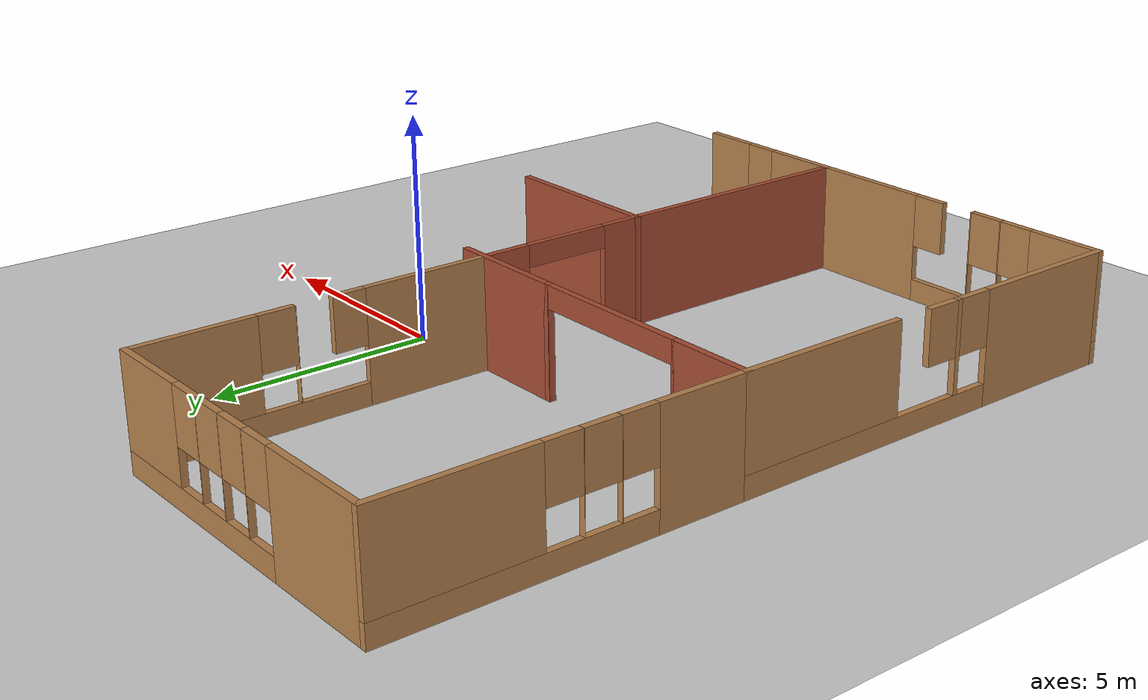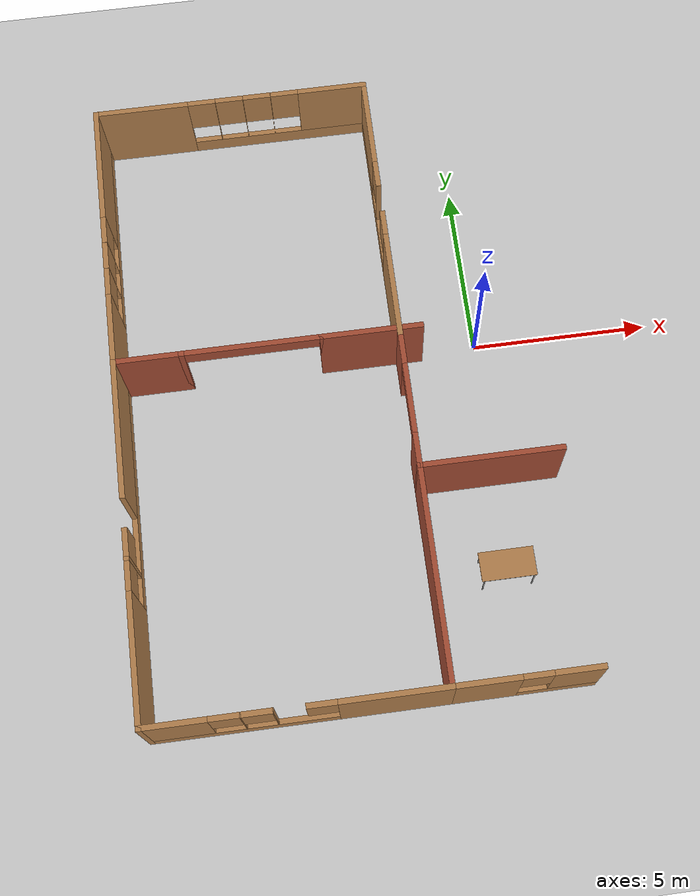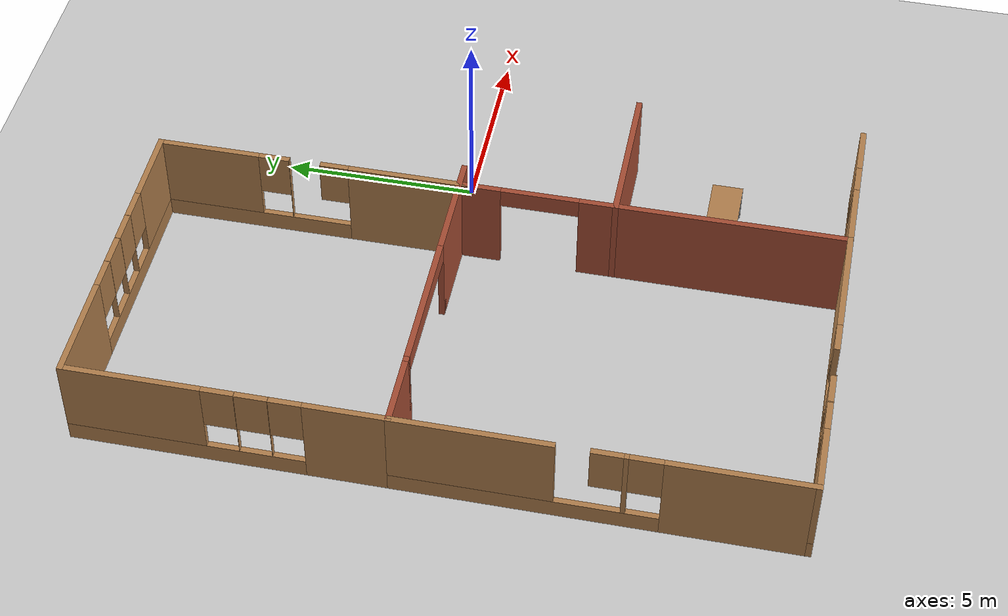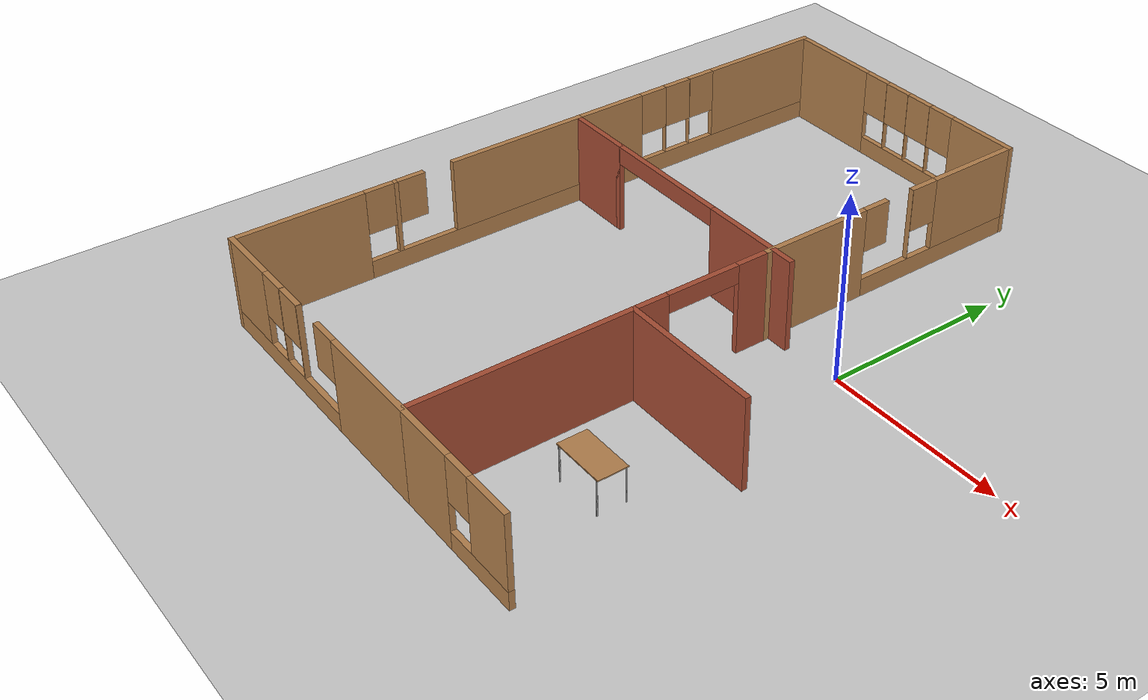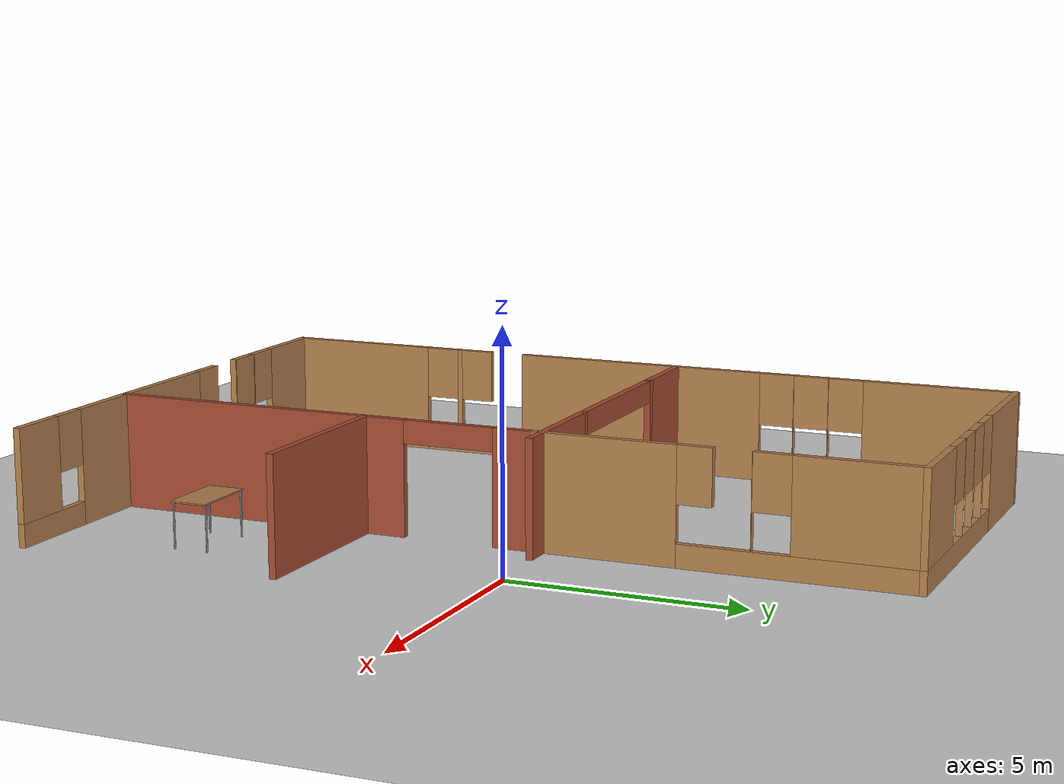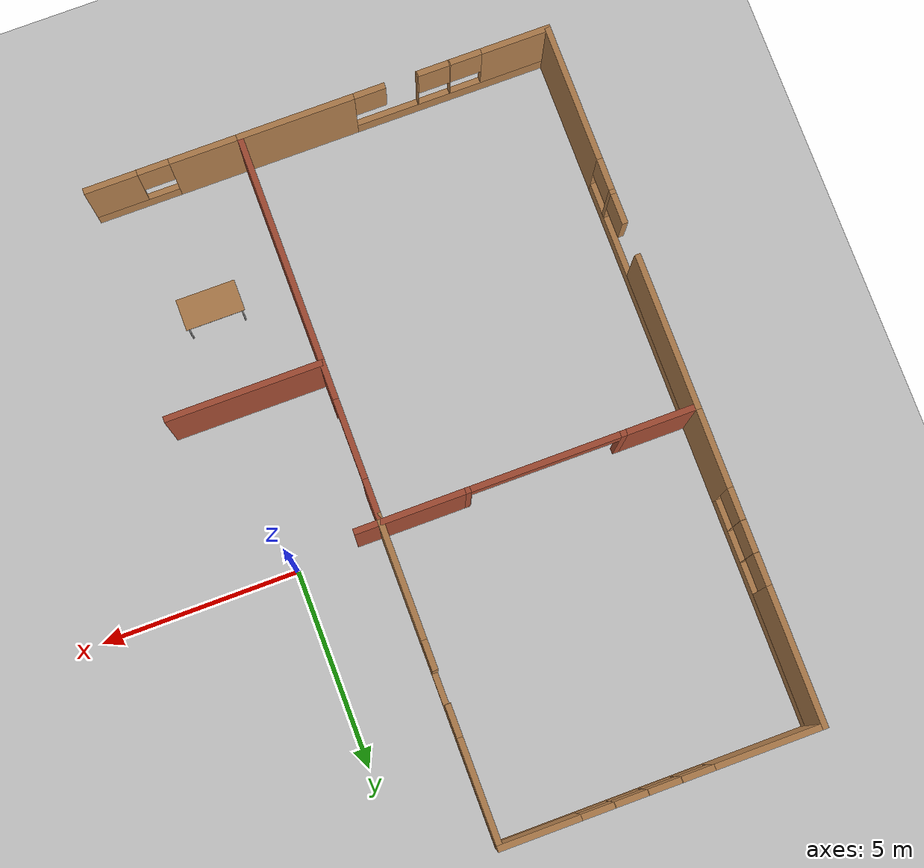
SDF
<sdf version="1.7">
 <world name="default">
  <model name="ground_plane">
   <static>1</static>
   <link name="link">
    <collision name="collision">
     <geometry><plane><normal>0 0 1</normal><size>100 100</size></plane></geometry>
     <surface>
      <contact><collide_bitmask>65535</collide_bitmask></contact>
      <friction><ode><mu>100</mu><mu2>50</mu2></ode></friction>
     </surface>
    </collision>
    <visual name="visual">
     <cast_shadows>0</cast_shadows>
     <geometry><plane><normal>0 0 1</normal><size>100 100</size></plane></geometry>
     <material>
      <script><uri>file://media/materials/scripts/gazebo.material</uri><name>Gazebo/Grey</name></script>
     </material>
    </visual>
   </link>
  </model>
  <model name="Untitled">
   <pose>3.61362 -0.139707 0 0 -0 0</pose>
   <link name="Wall_114">
    <collision name="Wall_114_Collision">
     <geometry><box><size>2 0.15 2.5</size></box></geometry>
     <pose>0 0 1.25 0 -0 0</pose>
    </collision>
    <visual name="Wall_114_Visual">
     <pose>0 0 1.25 0 -0 0</pose>
     <geometry><box><size>2 0.15 2.5</size></box></geometry>
     <material>
      <script><uri>file://media/materials/scripts/gazebo.material</uri><name>Gazebo/Bricks</name></script>
      <ambient>1 1 1 1</ambient>
     </material>
     <meta><layer>0</layer></meta>
    </visual>
    <pose>-12.775 0 0 0 -0 0</pose>
   </link>
   <link name="Wall_117">
    <pose>-9.925 0 0 0 -0 0</pose>
    <visual name="Wall_117_Visual_0">
     <pose>-1.92316 0 1.25 0 -0 0</pose>
     <geometry><box><size>0.15368 0.15 2.5</size></box></geometry>
     <material>
      <script><uri>file://media/materials/scripts/gazebo.material</uri><name>Gazebo/Bricks</name></script>
      <ambient>1 1 1 1</ambient>
     </material>
     <meta><layer>0</layer></meta>
    </visual>
    <collision name="Wall_117_Collision_0">
     <geometry><box><size>0.15368 0.15 2.5</size></box></geometry>
     <pose>-1.92316 0 1.25 0 -0 0</pose>
    </collision>
    <visual name="Wall_117_Visual_1">
     <pose>1.93479 0 1.25 0 -0 0</pose>
     <geometry><box><size>0.13042 0.15 2.5</size></box></geometry>
     <material>
      <script><uri>file://media/materials/scripts/gazebo.material</uri><name>Gazebo/Bricks</name></script>
      <ambient>1 1 1 1</ambient>
     </material>
     <meta><layer>0</layer></meta>
    </visual>
    <collision name="Wall_117_Collision_1">
     <geometry><box><size>0.13042 0.15 2.5</size></box></geometry>
     <pose>1.93479 0 1.25 0 -0 0</pose>
    </collision>
    <visual name="Wall_117_Visual_2">
     <pose>0.01163 0 2.25 0 -0 0</pose>
     <geometry><box><size>3.7159 0.15 0.5</size></box></geometry>
     <material>
      <script><uri>file://media/materials/scripts/gazebo.material</uri><name>Gazebo/Bricks</name></script>
      <ambient>1 1 1 1</ambient>
     </material>
     <meta><layer>0</layer></meta>
    </visual>
    <collision name="Wall_117_Collision_2">
     <geometry><box><size>3.7159 0.15 0.5</size></box></geometry>
     <pose>0.01163 0 2.25 0 -0 0</pose>
    </collision>
   </link>
   <link name="Wall_120">
    <collision name="Wall_120_Collision">
     <geometry><box><size>2.9 0.15 2.5</size></box></geometry>
     <pose>0 0 1.25 0 -0 0</pose>
    </collision>
    <visual name="Wall_120_Visual">
     <pose>0 0 1.25 0 -0 0</pose>
     <geometry><box><size>2.9 0.15 2.5</size></box></geometry>
     <material>
      <script><uri>file://media/materials/scripts/gazebo.material</uri><name>Gazebo/Bricks</name></script>
      <ambient>1 1 1 1</ambient>
     </material>
     <meta><layer>0</layer></meta>
    </visual>
    <pose>-6.625 0 0 0 -0 0</pose>
   </link>
   <link name="Wall_139">
    <pose>-9.775 -9.85 0 0 -0 3.14159</pose>
    <visual name="Wall_139_Visual_0">
     <pose>-2.51688 0 1.25 0 -0 0</pose>
     <geometry><box><size>2.96623 0.15 2.5</size></box></geometry>
     <material>
      <script><uri>file://media/materials/scripts/gazebo.material</uri><name>Gazebo/Wood</name></script>
      <ambient>1 1 1 1</ambient>
     </material>
     <meta><layer>0</layer></meta>
    </visual>
    <collision name="Wall_139_Collision_0">
     <geometry><box><size>2.96623 0.15 2.5</size></box></geometry>
     <pose>-2.51688 0 1.25 0 -0 0</pose>
    </collision>
    <visual name="Wall_139_Visual_1">
     <pose>1.48312 0 0.25 0 -0 0</pose>
     <geometry><box><size>5.03377 0.15 0.5</size></box></geometry>
     <material>
      <script><uri>file://media/materials/scripts/gazebo.material</uri><name>Gazebo/Wood</name></script>
      <ambient>1 1 1 1</ambient>
     </material>
     <meta><layer>0</layer></meta>
    </visual>
    <collision name="Wall_139_Collision_1">
     <geometry><box><size>5.03377 0.15 0.5</size></box></geometry>
     <pose>1.48312 0 0.25 0 -0 0</pose>
    </collision>
    <visual name="Wall_139_Visual_2">
     <pose>0.576542 0 1.5 0 -0 0</pose>
     <geometry><box><size>0.024607 0.15 2</size></box></geometry>
     <material>
      <script><uri>file://media/materials/scripts/gazebo.material</uri><name>Gazebo/Wood</name></script>
      <ambient>1 1 1 1</ambient>
     </material>
     <meta><layer>0</layer></meta>
    </visual>
    <collision name="Wall_139_Collision_2">
     <geometry><box><size>0.024607 0.15 2</size></box></geometry>
     <pose>0.576542 0 1.5 0 -0 0</pose>
    </collision>
    <visual name="Wall_139_Visual_3">
     <pose>1.40115 0 1.5 0 -0 0</pose>
     <geometry><box><size>0.024605 0.15 2</size></box></geometry>
     <material>
      <script><uri>file://media/materials/scripts/gazebo.material</uri><name>Gazebo/Wood</name></script>
      <ambient>1 1 1 1</ambient>
     </material>
     <meta><layer>0</layer></meta>
    </visual>
    <collision name="Wall_139_Collision_3">
     <geometry><box><size>0.024605 0.15 2</size></box></geometry>
     <pose>1.40115 0 1.5 0 -0 0</pose>
    </collision>
    <visual name="Wall_139_Visual_4">
     <pose>3.10672 0 1.5 0 -0 0</pose>
     <geometry><box><size>1.78655 0.15 2</size></box></geometry>
     <material>
      <script><uri>file://media/materials/scripts/gazebo.material</uri><name>Gazebo/Wood</name></script>
      <ambient>1 1 1 1</ambient>
     </material>
     <meta><layer>0</layer></meta>
    </visual>
    <collision name="Wall_139_Collision_4">
     <geometry><box><size>1.78655 0.15 2</size></box></geometry>
     <pose>3.10672 0 1.5 0 -0 0</pose>
    </collision>
    <visual name="Wall_139_Visual_5">
     <pose>-0.634764 0 1.9 0 -0 0</pose>
     <geometry><box><size>0.798006 0.15 1.2</size></box></geometry>
     <material>
      <script><uri>file://media/materials/scripts/gazebo.material</uri><name>Gazebo/Wood</name></script>
      <ambient>1 1 1 1</ambient>
     </material>
     <meta><layer>0</layer></meta>
    </visual>
    <collision name="Wall_139_Collision_5">
     <geometry><box><size>0.798006 0.15 1.2</size></box></geometry>
     <pose>-0.634764 0 1.9 0 -0 0</pose>
    </collision>
    <visual name="Wall_139_Visual_6">
     <pose>0.988846 0 1.9 0 -0 0</pose>
     <geometry><box><size>0.8 0.15 1.2</size></box></geometry>
     <material>
      <script><uri>file://media/materials/scripts/gazebo.material</uri><name>Gazebo/Wood</name></script>
      <ambient>1 1 1 1</ambient>
     </material>
     <meta><layer>0</layer></meta>
    </visual>
    <collision name="Wall_139_Collision_6">
     <geometry><box><size>0.8 0.15 1.2</size></box></geometry>
     <pose>0.988846 0 1.9 0 -0 0</pose>
    </collision>
    <visual name="Wall_139_Visual_7">
     <pose>1.81345 0 1.9 0 -0 0</pose>
     <geometry><box><size>0.8 0.15 1.2</size></box></geometry>
     <material>
      <script><uri>file://media/materials/scripts/gazebo.material</uri><name>Gazebo/Wood</name></script>
      <ambient>1 1 1 1</ambient>
     </material>
     <meta><layer>0</layer></meta>
    </visual>
    <collision name="Wall_139_Collision_7">
     <geometry><box><size>0.8 0.15 1.2</size></box></geometry>
     <pose>1.81345 0 1.9 0 -0 0</pose>
    </collision>
   </link>
   <link name="Wall_142">
    <pose>-13.7 -4.925 0 0 -0 1.5708</pose>
    <visual name="Wall_142_Visual_0">
     <pose>-3.22155 0 1.25 0 -0 0</pose>
     <geometry><box><size>3.55691 0.15 2.5</size></box></geometry>
     <material>
      <script><uri>file://media/materials/scripts/gazebo.material</uri><name>Gazebo/Wood</name></script>
      <ambient>1 1 1 1</ambient>
     </material>
     <meta><layer>0</layer></meta>
    </visual>
    <collision name="Wall_142_Collision_0">
     <geometry><box><size>3.55691 0.15 2.5</size></box></geometry>
     <pose>-3.22155 0 1.25 0 -0 0</pose>
    </collision>
    <visual name="Wall_142_Visual_1">
     <pose>1.77845 0 0.25 0 -0 0</pose>
     <geometry><box><size>6.44309 0.15 0.5</size></box></geometry>
     <material>
      <script><uri>file://media/materials/scripts/gazebo.material</uri><name>Gazebo/Wood</name></script>
      <ambient>1 1 1 1</ambient>
     </material>
     <meta><layer>0</layer></meta>
    </visual>
    <collision name="Wall_142_Collision_1">
     <geometry><box><size>6.44309 0.15 0.5</size></box></geometry>
     <pose>1.77845 0 0.25 0 -0 0</pose>
    </collision>
    <visual name="Wall_142_Visual_2">
     <pose>-0.58577 0 1.5 0 -0 0</pose>
     <geometry><box><size>0.114648 0.15 2</size></box></geometry>
     <material>
      <script><uri>file://media/materials/scripts/gazebo.material</uri><name>Gazebo/Wood</name></script>
      <ambient>1 1 1 1</ambient>
     </material>
     <meta><layer>0</layer></meta>
    </visual>
    <collision name="Wall_142_Collision_2">
     <geometry><box><size>0.114648 0.15 2</size></box></geometry>
     <pose>-0.58577 0 1.5 0 -0 0</pose>
    </collision>
    <visual name="Wall_142_Visual_3">
     <pose>3.02274 0 1.5 0 -0 0</pose>
     <geometry><box><size>3.95451 0.15 2</size></box></geometry>
     <material>
      <script><uri>file://media/materials/scripts/gazebo.material</uri><name>Gazebo/Wood</name></script>
      <ambient>1 1 1 1</ambient>
     </material>
     <meta><layer>0</layer></meta>
    </visual>
    <collision name="Wall_142_Collision_3">
     <geometry><box><size>3.95451 0.15 2</size></box></geometry>
     <pose>3.02274 0 1.5 0 -0 0</pose>
    </collision>
    <visual name="Wall_142_Visual_4">
     <pose>-1.04309 0 1.9 0 -0 0</pose>
     <geometry><box><size>0.8 0.15 1.2</size></box></geometry>
     <material>
      <script><uri>file://media/materials/scripts/gazebo.material</uri><name>Gazebo/Wood</name></script>
      <ambient>1 1 1 1</ambient>
     </material>
     <meta><layer>0</layer></meta>
    </visual>
    <collision name="Wall_142_Collision_4">
     <geometry><box><size>0.8 0.15 1.2</size></box></geometry>
     <pose>-1.04309 0 1.9 0 -0 0</pose>
    </collision>
    <visual name="Wall_142_Visual_5">
     <pose>-0.141479 0 1.9 0 -0 0</pose>
     <geometry><box><size>0.773933 0.15 1.2</size></box></geometry>
     <material>
      <script><uri>file://media/materials/scripts/gazebo.material</uri><name>Gazebo/Wood</name></script>
      <ambient>1 1 1 1</ambient>
     </material>
     <meta><layer>0</layer></meta>
    </visual>
    <collision name="Wall_142_Collision_5">
     <geometry><box><size>0.773933 0.15 1.2</size></box></geometry>
     <pose>-0.141479 0 1.9 0 -0 0</pose>
    </collision>
   </link>
   <link name="Wall_144">
    <collision name="Wall_144_Collision">
     <geometry><box><size>4 0.15 2.5</size></box></geometry>
     <pose>0 0 1.25 0 -0 0</pose>
    </collision>
    <visual name="Wall_144_Visual">
     <pose>0 0 1.25 0 -0 0</pose>
     <geometry><box><size>4 0.15 2.5</size></box></geometry>
     <material>
      <script><uri>file://media/materials/scripts/gazebo.material</uri><name>Gazebo/Bricks</name></script>
      <ambient>1 1 1 1</ambient>
     </material>
     <meta><layer>0</layer></meta>
    </visual>
    <pose>-3.925 -4 0 0 -0 3.14159</pose>
   </link>
   <link name="Wall_145">
    <collision name="Wall_145_Collision">
     <geometry><box><size>6 0.15 2.5</size></box></geometry>
     <pose>0 0 1.25 0 -0 0</pose>
    </collision>
    <visual name="Wall_145_Visual">
     <pose>0 0 1.25 0 -0 0</pose>
     <geometry><box><size>6 0.15 2.5</size></box></geometry>
     <material>
      <script><uri>file://media/materials/scripts/gazebo.material</uri><name>Gazebo/Bricks</name></script>
      <ambient>1 1 1 1</ambient>
     </material>
     <meta><layer>0</layer></meta>
    </visual>
    <pose>-5.85 -6.925 0 0 -0 -1.5708</pose>
   </link>
   <link name="Wall_147">
    <pose>-5.85 -2.075 0 0 -0 1.5708</pose>
    <visual name="Wall_147_Visual_0">
     <pose>-1.49946 0 1.25 0 -0 0</pose>
     <geometry><box><size>1.00108 0.15 2.5</size></box></geometry>
     <material>
      <script><uri>file://media/materials/scripts/gazebo.material</uri><name>Gazebo/Bricks</name></script>
      <ambient>1 1 1 1</ambient>
     </material>
     <meta><layer>0</layer></meta>
    </visual>
    <collision name="Wall_147_Collision_0">
     <geometry><box><size>1.00108 0.15 2.5</size></box></geometry>
     <pose>-1.49946 0 1.25 0 -0 0</pose>
    </collision>
    <visual name="Wall_147_Visual_1">
     <pose>1.50148 0 1.25 0 -0 0</pose>
     <geometry><box><size>0.997045 0.15 2.5</size></box></geometry>
     <material>
      <script><uri>file://media/materials/scripts/gazebo.material</uri><name>Gazebo/Bricks</name></script>
      <ambient>1 1 1 1</ambient>
     </material>
     <meta><layer>0</layer></meta>
    </visual>
    <collision name="Wall_147_Collision_1">
     <geometry><box><size>0.997045 0.15 2.5</size></box></geometry>
     <pose>1.50148 0 1.25 0 -0 0</pose>
    </collision>
    <visual name="Wall_147_Visual_2">
     <pose>0.002018 0 2.25 0 -0 0</pose>
     <geometry><box><size>2.00187 0.15 0.5</size></box></geometry>
     <material>
      <script><uri>file://media/materials/scripts/gazebo.material</uri><name>Gazebo/Bricks</name></script>
      <ambient>1 1 1 1</ambient>
     </material>
     <meta><layer>0</layer></meta>
    </visual>
    <collision name="Wall_147_Collision_2">
     <geometry><box><size>2.00187 0.15 0.5</size></box></geometry>
     <pose>0.002018 0 2.25 0 -0 0</pose>
    </collision>
   </link>
   <link name="Wall_152">
    <pose>-13.7 3.925 0 0 -0 1.5708</pose>
    <visual name="Wall_152_Visual_0">
     <pose>-2.94268 0 1.25 0 -0 0</pose>
     <geometry><box><size>2.11463 0.15 2.5</size></box></geometry>
     <material>
      <script><uri>file://media/materials/scripts/gazebo.material</uri><name>Gazebo/Wood</name></script>
      <ambient>1 1 1 1</ambient>
     </material>
     <meta><layer>0</layer></meta>
    </visual>
    <collision name="Wall_152_Collision_0">
     <geometry><box><size>2.11463 0.15 2.5</size></box></geometry>
     <pose>-2.94268 0 1.25 0 -0 0</pose>
    </collision>
    <visual name="Wall_152_Visual_1">
     <pose>1.05732 0 0.25 0 -0 0</pose>
     <geometry><box><size>5.88537 0.15 0.5</size></box></geometry>
     <material>
      <script><uri>file://media/materials/scripts/gazebo.material</uri><name>Gazebo/Wood</name></script>
      <ambient>1 1 1 1</ambient>
     </material>
     <meta><layer>0</layer></meta>
    </visual>
    <collision name="Wall_152_Collision_1">
     <geometry><box><size>5.88537 0.15 0.5</size></box></geometry>
     <pose>1.05732 0 0.25 0 -0 0</pose>
    </collision>
    <visual name="Wall_152_Visual_2">
     <pose>-1.08081 0 1.5 0 -0 0</pose>
     <geometry><box><size>0.009111 0.15 2</size></box></geometry>
     <material>
      <script><uri>file://media/materials/scripts/gazebo.material</uri><name>Gazebo/Wood</name></script>
      <ambient>1 1 1 1</ambient>
     </material>
     <meta><layer>0</layer></meta>
    </visual>
    <collision name="Wall_152_Collision_2">
     <geometry><box><size>0.009111 0.15 2</size></box></geometry>
     <pose>-1.08081 0 1.5 0 -0 0</pose>
    </collision>
    <visual name="Wall_152_Visual_3">
     <pose>-0.271702 0 1.5 0 -0 0</pose>
     <geometry><box><size>0.009112 0.15 2</size></box></geometry>
     <material>
      <script><uri>file://media/materials/scripts/gazebo.material</uri><name>Gazebo/Wood</name></script>
      <ambient>1 1 1 1</ambient>
     </material>
     <meta><layer>0</layer></meta>
    </visual>
    <collision name="Wall_152_Collision_3">
     <geometry><box><size>0.009112 0.15 2</size></box></geometry>
     <pose>-0.271702 0 1.5 0 -0 0</pose>
    </collision>
    <visual name="Wall_152_Visual_4">
     <pose>2.26643 0 1.5 0 -0 0</pose>
     <geometry><box><size>3.46715 0.15 2</size></box></geometry>
     <material>
      <script><uri>file://media/materials/scripts/gazebo.material</uri><name>Gazebo/Wood</name></script>
      <ambient>1 1 1 1</ambient>
     </material>
     <meta><layer>0</layer></meta>
    </visual>
    <collision name="Wall_152_Collision_4">
     <geometry><box><size>3.46715 0.15 2</size></box></geometry>
     <pose>2.26643 0 1.5 0 -0 0</pose>
    </collision>
    <visual name="Wall_152_Visual_5">
     <pose>-1.48537 0 1.9 0 -0 0</pose>
     <geometry><box><size>0.8 0.15 1.2</size></box></geometry>
     <material>
      <script><uri>file://media/materials/scripts/gazebo.material</uri><name>Gazebo/Wood</name></script>
      <ambient>1 1 1 1</ambient>
     </material>
     <meta><layer>0</layer></meta>
    </visual>
    <collision name="Wall_152_Collision_5">
     <geometry><box><size>0.8 0.15 1.2</size></box></geometry>
     <pose>-1.48537 0 1.9 0 -0 0</pose>
    </collision>
    <visual name="Wall_152_Visual_6">
     <pose>-0.676258 0 1.9 0 -0 0</pose>
     <geometry><box><size>0.8 0.15 1.2</size></box></geometry>
     <material>
      <script><uri>file://media/materials/scripts/gazebo.material</uri><name>Gazebo/Wood</name></script>
      <ambient>1 1 1 1</ambient>
     </material>
     <meta><layer>0</layer></meta>
    </visual>
    <collision name="Wall_152_Collision_6">
     <geometry><box><size>0.8 0.15 1.2</size></box></geometry>
     <pose>-0.676258 0 1.9 0 -0 0</pose>
    </collision>
    <visual name="Wall_152_Visual_7">
     <pose>0.132854 0 1.9 0 -0 0</pose>
     <geometry><box><size>0.8 0.15 1.2</size></box></geometry>
     <material>
      <script><uri>file://media/materials/scripts/gazebo.material</uri><name>Gazebo/Wood</name></script>
      <ambient>1 1 1 1</ambient>
     </material>
     <meta><layer>0</layer></meta>
    </visual>
    <collision name="Wall_152_Collision_7">
     <geometry><box><size>0.8 0.15 1.2</size></box></geometry>
     <pose>0.132854 0 1.9 0 -0 0</pose>
    </collision>
   </link>
   <link name="Wall_156">
    <pose>-5.85 3.775 0 0 -0 1.5708</pose>
    <visual name="Wall_156_Visual_0">
     <pose>-2.44554 0 1.25 0 -0 0</pose>
     <geometry><box><size>3.10892 0.15 2.5</size></box></geometry>
     <material>
      <script><uri>file://media/materials/scripts/gazebo.material</uri><name>Gazebo/Wood</name></script>
      <ambient>1 1 1 1</ambient>
     </material>
     <meta><layer>0</layer></meta>
    </visual>
    <collision name="Wall_156_Collision_0">
     <geometry><box><size>3.10892 0.15 2.5</size></box></geometry>
     <pose>-2.44554 0 1.25 0 -0 0</pose>
    </collision>
    <visual name="Wall_156_Visual_1">
     <pose>1.55446 0 0.25 0 -0 0</pose>
     <geometry><box><size>4.89108 0.15 0.5</size></box></geometry>
     <material>
      <script><uri>file://media/materials/scripts/gazebo.material</uri><name>Gazebo/Wood</name></script>
      <ambient>1 1 1 1</ambient>
     </material>
     <meta><layer>0</layer></meta>
    </visual>
    <collision name="Wall_156_Collision_1">
     <geometry><box><size>4.89108 0.15 0.5</size></box></geometry>
     <pose>1.55446 0 0.25 0 -0 0</pose>
    </collision>
    <visual name="Wall_156_Visual_2">
     <pose>0.652232 0 1.5 0 -0 0</pose>
     <geometry><box><size>0.009112 0.15 2</size></box></geometry>
     <material>
      <script><uri>file://media/materials/scripts/gazebo.material</uri><name>Gazebo/Wood</name></script>
      <ambient>1 1 1 1</ambient>
     </material>
     <meta><layer>0</layer></meta>
    </visual>
    <collision name="Wall_156_Collision_2">
     <geometry><box><size>0.009112 0.15 2</size></box></geometry>
     <pose>0.652232 0 1.5 0 -0 0</pose>
    </collision>
    <visual name="Wall_156_Visual_3">
     <pose>2.72839 0 1.5 0 -0 0</pose>
     <geometry><box><size>2.54321 0.15 2</size></box></geometry>
     <material>
      <script><uri>file://media/materials/scripts/gazebo.material</uri><name>Gazebo/Wood</name></script>
      <ambient>1 1 1 1</ambient>
     </material>
     <meta><layer>0</layer></meta>
    </visual>
    <collision name="Wall_156_Collision_3">
     <geometry><box><size>2.54321 0.15 2</size></box></geometry>
     <pose>2.72839 0 1.5 0 -0 0</pose>
    </collision>
    <visual name="Wall_156_Visual_4">
     <pose>-0.521701 0 1.9 0 -0 0</pose>
     <geometry><box><size>0.738754 0.15 1.2</size></box></geometry>
     <material>
      <script><uri>file://media/materials/scripts/gazebo.material</uri><name>Gazebo/Wood</name></script>
      <ambient>1 1 1 1</ambient>
     </material>
     <meta><layer>0</layer></meta>
    </visual>
    <collision name="Wall_156_Collision_4">
     <geometry><box><size>0.738754 0.15 1.2</size></box></geometry>
     <pose>-0.521701 0 1.9 0 -0 0</pose>
    </collision>
    <visual name="Wall_156_Visual_5">
     <pose>1.05679 0 1.9 0 -0 0</pose>
     <geometry><box><size>0.8 0.15 1.2</size></box></geometry>
     <material>
      <script><uri>file://media/materials/scripts/gazebo.material</uri><name>Gazebo/Wood</name></script>
      <ambient>1 1 1 1</ambient>
     </material>
     <meta><layer>0</layer></meta>
    </visual>
    <collision name="Wall_156_Collision_5">
     <geometry><box><size>0.8 0.15 1.2</size></box></geometry>
     <pose>1.05679 0 1.9 0 -0 0</pose>
    </collision>
   </link>
   <link name="Wall_158">
    <pose>-9.775 7.85 0 0 -0 0</pose>
    <visual name="Wall_158_Visual_0">
     <pose>-2.62606 0 1.25 0 -0 0</pose>
     <geometry><box><size>2.74789 0.15 2.5</size></box></geometry>
     <material>
      <script><uri>file://media/materials/scripts/gazebo.material</uri><name>Gazebo/Wood</name></script>
      <ambient>1 1 1 1</ambient>
     </material>
     <meta><layer>0</layer></meta>
    </visual>
    <collision name="Wall_158_Collision_0">
     <geometry><box><size>2.74789 0.15 2.5</size></box></geometry>
     <pose>-2.62606 0 1.25 0 -0 0</pose>
    </collision>
    <visual name="Wall_158_Visual_1">
     <pose>1.37394 0 0.25 0 -0 0</pose>
     <geometry><box><size>5.25211 0.15 0.5</size></box></geometry>
     <material>
      <script><uri>file://media/materials/scripts/gazebo.material</uri><name>Gazebo/Wood</name></script>
      <ambient>1 1 1 1</ambient>
     </material>
     <meta><layer>0</layer></meta>
    </visual>
    <collision name="Wall_158_Collision_1">
     <geometry><box><size>5.25211 0.15 0.5</size></box></geometry>
     <pose>1.37394 0 0.25 0 -0 0</pose>
    </collision>
    <visual name="Wall_158_Visual_2">
     <pose>-0.447556 0 1.5 0 -0 0</pose>
     <geometry><box><size>0.009112 0.15 2</size></box></geometry>
     <material>
      <script><uri>file://media/materials/scripts/gazebo.material</uri><name>Gazebo/Wood</name></script>
      <ambient>1 1 1 1</ambient>
     </material>
     <meta><layer>0</layer></meta>
    </visual>
    <collision name="Wall_158_Collision_2">
     <geometry><box><size>0.009112 0.15 2</size></box></geometry>
     <pose>-0.447556 0 1.5 0 -0 0</pose>
    </collision>
    <visual name="Wall_158_Visual_3">
     <pose>0.361556 0 1.5 0 -0 0</pose>
     <geometry><box><size>0.009112 0.15 2</size></box></geometry>
     <material>
      <script><uri>file://media/materials/scripts/gazebo.material</uri><name>Gazebo/Wood</name></script>
      <ambient>1 1 1 1</ambient>
     </material>
     <meta><layer>0</layer></meta>
    </visual>
    <collision name="Wall_158_Collision_3">
     <geometry><box><size>0.009112 0.15 2</size></box></geometry>
     <pose>0.361556 0 1.5 0 -0 0</pose>
    </collision>
    <visual name="Wall_158_Visual_4">
     <pose>1.17067 0 1.5 0 -0 0</pose>
     <geometry><box><size>0.009112 0.15 2</size></box></geometry>
     <material>
      <script><uri>file://media/materials/scripts/gazebo.material</uri><name>Gazebo/Wood</name></script>
      <ambient>1 1 1 1</ambient>
     </material>
     <meta><layer>0</layer></meta>
    </visual>
    <collision name="Wall_158_Collision_4">
     <geometry><box><size>0.009112 0.15 2</size></box></geometry>
     <pose>1.17067 0 1.5 0 -0 0</pose>
    </collision>
    <visual name="Wall_158_Visual_5">
     <pose>2.98761 0 1.5 0 -0 0</pose>
     <geometry><box><size>2.02478 0.15 2</size></box></geometry>
     <material>
      <script><uri>file://media/materials/scripts/gazebo.material</uri><name>Gazebo/Wood</name></script>
      <ambient>1 1 1 1</ambient>
     </material>
     <meta><layer>0</layer></meta>
    </visual>
    <collision name="Wall_158_Collision_5">
     <geometry><box><size>2.02478 0.15 2</size></box></geometry>
     <pose>2.98761 0 1.5 0 -0 0</pose>
    </collision>
    <visual name="Wall_158_Visual_6">
     <pose>-0.852112 0 1.9 0 -0 0</pose>
     <geometry><box><size>0.8 0.15 1.2</size></box></geometry>
     <material>
      <script><uri>file://media/materials/scripts/gazebo.material</uri><name>Gazebo/Wood</name></script>
      <ambient>1 1 1 1</ambient>
     </material>
     <meta><layer>0</layer></meta>
    </visual>
    <collision name="Wall_158_Collision_6">
     <geometry><box><size>0.8 0.15 1.2</size></box></geometry>
     <pose>-0.852112 0 1.9 0 -0 0</pose>
    </collision>
    <visual name="Wall_158_Visual_7">
     <pose>-0.043 0 1.9 0 -0 0</pose>
     <geometry><box><size>0.8 0.15 1.2</size></box></geometry>
     <material>
      <script><uri>file://media/materials/scripts/gazebo.material</uri><name>Gazebo/Wood</name></script>
      <ambient>1 1 1 1</ambient>
     </material>
     <meta><layer>0</layer></meta>
    </visual>
    <collision name="Wall_158_Collision_7">
     <geometry><box><size>0.8 0.15 1.2</size></box></geometry>
     <pose>-0.043 0 1.9 0 -0 0</pose>
    </collision>
    <visual name="Wall_158_Visual_8">
     <pose>0.766111 0 1.9 0 -0 0</pose>
     <geometry><box><size>0.8 0.15 1.2</size></box></geometry>
     <material>
      <script><uri>file://media/materials/scripts/gazebo.material</uri><name>Gazebo/Wood</name></script>
      <ambient>1 1 1 1</ambient>
     </material>
     <meta><layer>0</layer></meta>
    </visual>
    <collision name="Wall_158_Collision_8">
     <geometry><box><size>0.8 0.15 1.2</size></box></geometry>
     <pose>0.766111 0 1.9 0 -0 0</pose>
    </collision>
    <visual name="Wall_158_Visual_9">
     <pose>1.57522 0 1.9 0 -0 0</pose>
     <geometry><box><size>0.8 0.15 1.2</size></box></geometry>
     <material>
      <script><uri>file://media/materials/scripts/gazebo.material</uri><name>Gazebo/Wood</name></script>
      <ambient>1 1 1 1</ambient>
     </material>
     <meta><layer>0</layer></meta>
    </visual>
    <collision name="Wall_158_Collision_9">
     <geometry><box><size>0.8 0.15 1.2</size></box></geometry>
     <pose>1.57522 0 1.9 0 -0 0</pose>
    </collision>
   </link>
   <link name="Wall_49">
    <pose>-3.925 -9.85 0 0 -0 0</pose>
    <visual name="Wall_49_Visual_0">
     <pose>-1.0683 0 1.25 0 -0 0</pose>
     <geometry><box><size>1.86341 0.15 2.5</size></box></geometry>
     <material>
      <script><uri>file://media/materials/scripts/gazebo.material</uri><name>Gazebo/Wood</name></script>
      <ambient>1 1 1 1</ambient>
     </material>
     <meta><layer>0</layer></meta>
    </visual>
    <collision name="Wall_49_Collision_0">
     <geometry><box><size>1.86341 0.15 2.5</size></box></geometry>
     <pose>-1.0683 0 1.25 0 -0 0</pose>
    </collision>
    <visual name="Wall_49_Visual_1">
     <pose>0.931704 0 0.25 0 -0 0</pose>
     <geometry><box><size>2.13659 0.15 0.5</size></box></geometry>
     <material>
      <script><uri>file://media/materials/scripts/gazebo.material</uri><name>Gazebo/Wood</name></script>
      <ambient>1 1 1 1</ambient>
     </material>
     <meta><layer>0</layer></meta>
    </visual>
    <collision name="Wall_49_Collision_1">
     <geometry><box><size>2.13659 0.15 0.5</size></box></geometry>
     <pose>0.931704 0 0.25 0 -0 0</pose>
    </collision>
    <visual name="Wall_49_Visual_2">
     <pose>1.3317 0 1.5 0 -0 0</pose>
     <geometry><box><size>1.33659 0.15 2</size></box></geometry>
     <material>
      <script><uri>file://media/materials/scripts/gazebo.material</uri><name>Gazebo/Wood</name></script>
      <ambient>1 1 1 1</ambient>
     </material>
     <meta><layer>0</layer></meta>
    </visual>
    <collision name="Wall_49_Collision_2">
     <geometry><box><size>1.33659 0.15 2</size></box></geometry>
     <pose>1.3317 0 1.5 0 -0 0</pose>
    </collision>
    <visual name="Wall_49_Visual_3">
     <pose>0.263408 0 1.9 0 -0 0</pose>
     <geometry><box><size>0.8 0.15 1.2</size></box></geometry>
     <material>
      <script><uri>file://media/materials/scripts/gazebo.material</uri><name>Gazebo/Wood</name></script>
      <ambient>1 1 1 1</ambient>
     </material>
     <meta><layer>0</layer></meta>
    </visual>
    <collision name="Wall_49_Collision_3">
     <geometry><box><size>0.8 0.15 1.2</size></box></geometry>
     <pose>0.263408 0 1.9 0 -0 0</pose>
    </collision>
   </link>
   <static>1</static>
  </model>
  <model name="Table">
   <static>1</static>
   <link name="link">
    <collision name="surface">
     <pose>0 0 1 0 -0 0</pose>
     <geometry><box><size>1.5 0.8 0.03</size></box></geometry>
     <surface><friction><ode><mu>0.6</mu><mu2>0.6</mu2></ode></friction></surface>
    </collision>
    <visual name="visual1">
     <pose>0 0 1 0 -0 0</pose>
     <geometry><box><size>1.5 0.8 0.03</size></box></geometry>
     <material>
      <diffuse>1 1 1 1</diffuse>
      <script><uri>file://media/materials/scripts/gazebo.material</uri><name>Gazebo/Wood</name></script>
      <pbr>
       <metal>
        <albedo_map>https://fuel.ignitionrobotics.org/1.0/malbonico/models/table/1/files/Table_Diffuse.jpg</albedo_map>
       </metal>
      </pbr>
     </material>
    </visual>
    <collision name="front_left_leg">
     <pose>0.68 0.38 0.5 0 -0 0</pose>
     <geometry><cylinder><radius>0.02</radius><length>1</length></cylinder></geometry>
    </collision>
    <visual name="front_left_leg">
     <pose>0.68 0.38 0.5 0 -0 0</pose>
     <geometry><cylinder><radius>0.02</radius><length>1</length></cylinder></geometry>
     <material>
      <diffuse>0.5 0.5 0.5 1</diffuse>
      <script><uri>file://media/materials/scripts/gazebo.material</uri><name>Gazebo/Grey</name></script>
     </material>
    </visual>
    <collision name="front_right_leg">
     <pose>0.68 -0.38 0.5 0 -0 0</pose>
     <geometry><cylinder><radius>0.02</radius><length>1</length></cylinder></geometry>
    </collision>
    <visual name="front_right_leg">
     <pose>0.68 -0.38 0.5 0 -0 0</pose>
     <geometry><cylinder><radius>0.02</radius><length>1</length></cylinder></geometry>
     <material>
      <diffuse>0.5 0.5 0.5 1</diffuse>
      <script><uri>file://media/materials/scripts/gazebo.material</uri><name>Gazebo/Grey</name></script>
     </material>
    </visual>
    <collision name="back_right_leg">
     <pose>-0.68 -0.38 0.5 0 -0 0</pose>
     <geometry><cylinder><radius>0.02</radius><length>1</length></cylinder></geometry>
    </collision>
    <visual name="back_right_leg">
     <pose>-0.68 -0.38 0.5 0 -0 0</pose>
     <geometry><cylinder><radius>0.02</radius><length>1</length></cylinder></geometry>
     <material>
      <diffuse>0.5 0.5 0.5 1</diffuse>
      <script><uri>file://media/materials/scripts/gazebo.material</uri><name>Gazebo/Grey</name></script>
     </material>
    </visual>
    <collision name="back_left_leg">
     <pose>-0.68 0.38 0.5 0 -0 0</pose>
     <geometry><cylinder><radius>0.02</radius><length>1</length></cylinder></geometry>
    </collision>
    <visual name="back_left_leg">
     <pose>-0.68 0.38 0.5 0 -0 0</pose>
     <geometry><cylinder><radius>0.02</radius><length>1</length></cylinder></geometry>
     <material>
      <diffuse>0.5 0.5 0.5 1</diffuse>
      <script><uri>file://media/materials/scripts/gazebo.material</uri><name>Gazebo/Grey</name></script>
     </material>
    </visual>
   </link>
   <pose>-0.194516 -6.7296 0 0 -0 0</pose>
  </model>
 </world>
</sdf>
